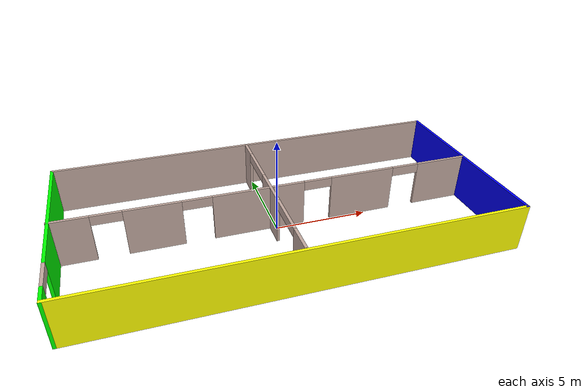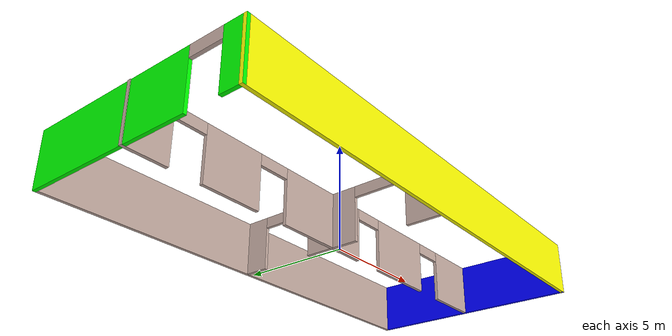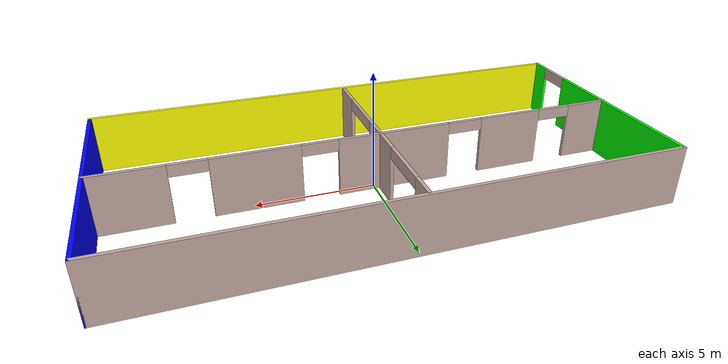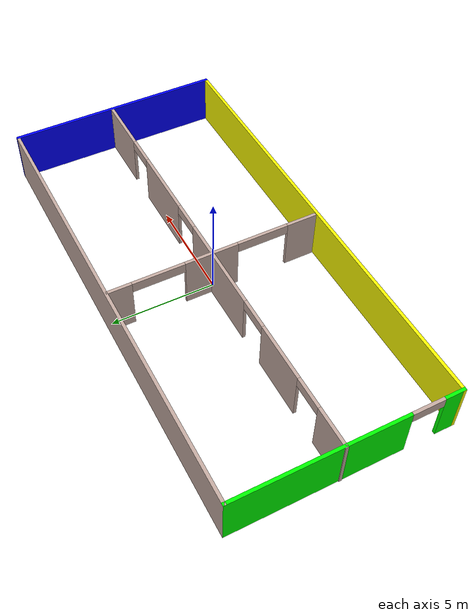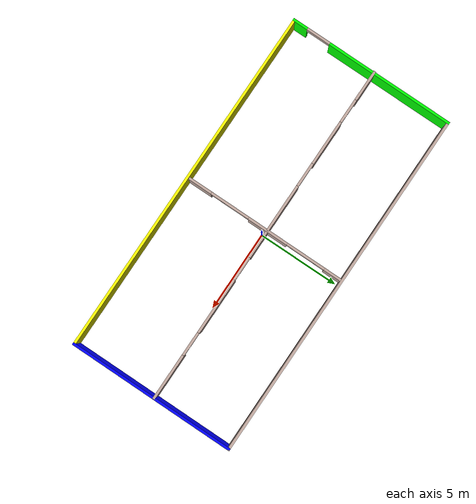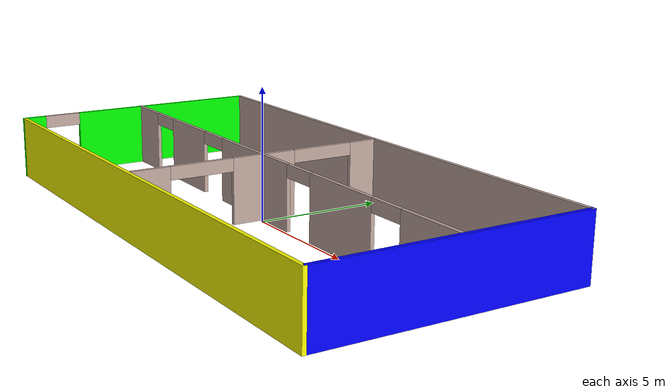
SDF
<?xml version='1.0'?>
<sdf version='1.6'>
  <model name='mybuilding'>
    <link name='Wall_1'>
      <pose frame=''>-10.9097 0 0 0 -0 1.5708</pose>
      <self_collide>0</self_collide>
      <kinematic>0</kinematic>
      <gravity>1</gravity>
      <inertial>
        <mass>1</mass>
        <pose frame=''>0 0 0 0 -0 0</pose>
        <inertia>
          <ixx>1</ixx>
          <ixy>0</ixy>
          <ixz>0</ixz>
          <iyy>1</iyy>
          <iyz>0</iyz>
          <izz>1</izz>
        </inertia>
      </inertial>
      <visual name='Wall_1_Visual_0'>
        <pose frame=''>-4.76721 0 1.25 0 -0 0</pose>
        <geometry>
          <box>
            <size>0.965586 0.15 2.5</size>
          </box>
        </geometry>
        <material>
          <script>
            <uri>file://media/materials/scripts/gazebo.material</uri>
            <name>Gazebo/Grey</name>
          </script>
          <ambient>0 1 0 1</ambient>
          <shader type='pixel'>
            <normal_map>__default__</normal_map>
          </shader>
          <diffuse>0 1 0 1</diffuse>
          <specular>0 1 0 1</specular>
          <emissive>0 1 0 1</emissive>
        </material>
        <meta>
          <layer>0</layer>
        </meta>
        <transparency>0</transparency>
        <cast_shadows>1</cast_shadows>
      </visual>
      <visual name='Wall_1_Visual_1'>
        <pose frame=''>1.23279 0 1.25 0 -0 0</pose>
        <geometry>
          <box>
            <size>8.03441 0.15 2.5</size>
          </box>
        </geometry>
        <material>
          <script>
            <uri>file://media/materials/scripts/gazebo.material</uri>
            <name>Gazebo/Grey</name>
          </script>
          <ambient>0 1 0 1</ambient>
          <shader type='pixel'>
            <normal_map>__default__</normal_map>
          </shader>
          <diffuse>0 1 0 1</diffuse>
          <specular>0 1 0 1</specular>
          <emissive>0 1 0 1</emissive>
        </material>
        <meta>
          <layer>0</layer>
        </meta>
        <transparency>0</transparency>
        <cast_shadows>1</cast_shadows>
      </visual>
      <visual name='Wall_1_Visual_2'>
        <pose frame=''>-3.53441 0 2.25 0 -0 0</pose>
        <geometry>
          <box>
            <size>1.5 0.15 0.5</size>
          </box>
        </geometry>
        <material>
          <script>
            <uri>file://media/materials/scripts/gazebo.material</uri>
            <name>Gazebo/Grey</name>
          </script>
          <ambient>0.761 0.663 0.627 1</ambient>
          <shader type='pixel'>
            <normal_map>__default__</normal_map>
          </shader>
          <diffuse>0.7 0.7 0.7 1</diffuse>
          <specular>0.01 0.01 0.01 1</specular>
          <emissive>0 0 0 1</emissive>
        </material>
        <meta>
          <layer>0</layer>
        </meta>
        <transparency>0</transparency>
        <cast_shadows>1</cast_shadows>
      </visual>
      <collision name='Wall_1_Collision_0'>
        <laser_retro>0</laser_retro>
        <max_contacts>10</max_contacts>
        <pose frame=''>-4.76721 0 1.25 0 -0 0</pose>
        <geometry>
          <box>
            <size>0.965586 0.15 2.5</size>
          </box>
        </geometry>
        <surface>
          <friction>
            <ode>
              <mu>1</mu>
              <mu2>1</mu2>
              <fdir1>0 0 0</fdir1>
              <slip1>0</slip1>
              <slip2>0</slip2>
            </ode>
            <torsional>
              <coefficient>1</coefficient>
              <patch_radius>0</patch_radius>
              <surface_radius>0</surface_radius>
              <use_patch_radius>1</use_patch_radius>
              <ode>
                <slip>0</slip>
              </ode>
            </torsional>
          </friction>
          <bounce>
            <restitution_coefficient>0</restitution_coefficient>
            <threshold>1e+06</threshold>
          </bounce>
          <contact>
            <collide_without_contact>0</collide_without_contact>
            <collide_without_contact_bitmask>1</collide_without_contact_bitmask>
            <collide_bitmask>1</collide_bitmask>
            <ode>
              <soft_cfm>0</soft_cfm>
              <soft_erp>0.2</soft_erp>
              <kp>1e+13</kp>
              <kd>1</kd>
              <max_vel>0.01</max_vel>
              <min_depth>0</min_depth>
            </ode>
            <bullet>
              <split_impulse>1</split_impulse>
              <split_impulse_penetration_threshold>-0.01</split_impulse_penetration_threshold>
              <soft_cfm>0</soft_cfm>
              <soft_erp>0.2</soft_erp>
              <kp>1e+13</kp>
              <kd>1</kd>
            </bullet>
          </contact>
        </surface>
      </collision>
      <collision name='Wall_1_Collision_1'>
        <laser_retro>0</laser_retro>
        <max_contacts>10</max_contacts>
        <pose frame=''>1.23279 0 1.25 0 -0 0</pose>
        <geometry>
          <box>
            <size>8.03441 0.15 2.5</size>
          </box>
        </geometry>
        <surface>
          <friction>
            <ode>
              <mu>1</mu>
              <mu2>1</mu2>
              <fdir1>0 0 0</fdir1>
              <slip1>0</slip1>
              <slip2>0</slip2>
            </ode>
            <torsional>
              <coefficient>1</coefficient>
              <patch_radius>0</patch_radius>
              <surface_radius>0</surface_radius>
              <use_patch_radius>1</use_patch_radius>
              <ode>
                <slip>0</slip>
              </ode>
            </torsional>
          </friction>
          <bounce>
            <restitution_coefficient>0</restitution_coefficient>
            <threshold>1e+06</threshold>
          </bounce>
          <contact>
            <collide_without_contact>0</collide_without_contact>
            <collide_without_contact_bitmask>1</collide_without_contact_bitmask>
            <collide_bitmask>1</collide_bitmask>
            <ode>
              <soft_cfm>0</soft_cfm>
              <soft_erp>0.2</soft_erp>
              <kp>1e+13</kp>
              <kd>1</kd>
              <max_vel>0.01</max_vel>
              <min_depth>0</min_depth>
            </ode>
            <bullet>
              <split_impulse>1</split_impulse>
              <split_impulse_penetration_threshold>-0.01</split_impulse_penetration_threshold>
              <soft_cfm>0</soft_cfm>
              <soft_erp>0.2</soft_erp>
              <kp>1e+13</kp>
              <kd>1</kd>
            </bullet>
          </contact>
        </surface>
      </collision>
      <collision name='Wall_1_Collision_2'>
        <laser_retro>0</laser_retro>
        <max_contacts>10</max_contacts>
        <pose frame=''>-3.53441 0 2.25 0 -0 0</pose>
        <geometry>
          <box>
            <size>1.5 0.15 0.5</size>
          </box>
        </geometry>
        <surface>
          <friction>
            <ode>
              <mu>1</mu>
              <mu2>1</mu2>
              <fdir1>0 0 0</fdir1>
              <slip1>0</slip1>
              <slip2>0</slip2>
            </ode>
            <torsional>
              <coefficient>1</coefficient>
              <patch_radius>0</patch_radius>
              <surface_radius>0</surface_radius>
              <use_patch_radius>1</use_patch_radius>
              <ode>
                <slip>0</slip>
              </ode>
            </torsional>
          </friction>
          <bounce>
            <restitution_coefficient>0</restitution_coefficient>
            <threshold>1e+06</threshold>
          </bounce>
          <contact>
            <collide_without_contact>0</collide_without_contact>
            <collide_without_contact_bitmask>1</collide_without_contact_bitmask>
            <collide_bitmask>1</collide_bitmask>
            <ode>
              <soft_cfm>0</soft_cfm>
              <soft_erp>0.2</soft_erp>
              <kp>1e+13</kp>
              <kd>1</kd>
              <max_vel>0.01</max_vel>
              <min_depth>0</min_depth>
            </ode>
            <bullet>
              <split_impulse>1</split_impulse>
              <split_impulse_penetration_threshold>-0.01</split_impulse_penetration_threshold>
              <soft_cfm>0</soft_cfm>
              <soft_erp>0.2</soft_erp>
              <kp>1e+13</kp>
              <kd>1</kd>
            </bullet>
          </contact>
        </surface>
      </collision>
    </link>
    <link name='Wall_2'>
      <pose frame=''>0.015294 5.175 0 0 -0 0</pose>
      <self_collide>0</self_collide>
      <kinematic>0</kinematic>
      <visual name='Wall_2_Visual'>
        <pose frame=''>0 0 1.25 0 -0 0</pose>
        <geometry>
          <box>
            <size>22 0.15 2.5</size>
          </box>
        </geometry>
        <material>
          <script>
            <uri>file://media/materials/scripts/gazebo.material</uri>
            <name>Gazebo/Grey</name>
          </script>
          <ambient>0.760784 0.662745 0.627451 1</ambient>
          <shader type='pixel'/>
          <diffuse>0.7 0.7 0.7 1</diffuse>
          <specular>0.01 0.01 0.01 1</specular>
          <emissive>0 0 0 1</emissive>
        </material>
        <meta>
          <layer>0</layer>
        </meta>
        <transparency>0</transparency>
        <cast_shadows>1</cast_shadows>
      </visual>
      <collision name='Wall_2_Collision'>
        <laser_retro>0</laser_retro>
        <max_contacts>10</max_contacts>
        <pose frame=''>0 0 1.25 0 -0 0</pose>
        <geometry>
          <box>
            <size>22 0.15 2.5</size>
          </box>
        </geometry>
        <surface>
          <friction>
            <ode>
              <mu>1</mu>
              <mu2>1</mu2>
              <fdir1>0 0 0</fdir1>
              <slip1>0</slip1>
              <slip2>0</slip2>
            </ode>
            <torsional>
              <coefficient>1</coefficient>
              <patch_radius>0</patch_radius>
              <surface_radius>0</surface_radius>
              <use_patch_radius>1</use_patch_radius>
              <ode>
                <slip>0</slip>
              </ode>
            </torsional>
          </friction>
          <bounce>
            <restitution_coefficient>0</restitution_coefficient>
            <threshold>1e+06</threshold>
          </bounce>
          <contact>
            <collide_without_contact>0</collide_without_contact>
            <collide_without_contact_bitmask>1</collide_without_contact_bitmask>
            <collide_bitmask>1</collide_bitmask>
            <ode>
              <soft_cfm>0</soft_cfm>
              <soft_erp>0.2</soft_erp>
              <kp>1e+13</kp>
              <kd>1</kd>
              <max_vel>0.01</max_vel>
              <min_depth>0</min_depth>
            </ode>
            <bullet>
              <split_impulse>1</split_impulse>
              <split_impulse_penetration_threshold>-0.01</split_impulse_penetration_threshold>
              <soft_cfm>0</soft_cfm>
              <soft_erp>0.2</soft_erp>
              <kp>1e+13</kp>
              <kd>1</kd>
            </bullet>
          </contact>
        </surface>
      </collision>
    </link>
    <link name='Wall_3'>
      <pose frame=''>10.9403 0 0 0 0 -1.5708</pose>
      <self_collide>0</self_collide>
      <kinematic>0</kinematic>
      <gravity>1</gravity>
      <inertial>
        <mass>1</mass>
        <pose frame=''>0 0 0 0 -0 0</pose>
        <inertia>
          <ixx>1</ixx>
          <ixy>0</ixy>
          <ixz>0</ixz>
          <iyy>1</iyy>
          <iyz>0</iyz>
          <izz>1</izz>
        </inertia>
      </inertial>
      <visual name='Wall_3_Visual'>
        <pose frame=''>0 0 1.25 0 -0 0</pose>
        <geometry>
          <box>
            <size>10.5 0.15 2.5</size>
          </box>
        </geometry>
        <material>
          <script>
            <uri>file://media/materials/scripts/gazebo.material</uri>
            <name>Gazebo/Grey</name>
          </script>
          <ambient>0 0 1 1</ambient>
          <shader type='pixel'>
            <normal_map>__default__</normal_map>
          </shader>
          <diffuse>0 0 1 1</diffuse>
          <specular>0 0 1 1</specular>
          <emissive>0 0 1 1</emissive>
        </material>
        <meta>
          <layer>0</layer>
        </meta>
        <transparency>0</transparency>
        <cast_shadows>1</cast_shadows>
      </visual>
      <collision name='Wall_3_Collision'>
        <laser_retro>0</laser_retro>
        <max_contacts>10</max_contacts>
        <pose frame=''>0 0 1.25 0 -0 0</pose>
        <geometry>
          <box>
            <size>10.5 0.15 2.5</size>
          </box>
        </geometry>
        <surface>
          <friction>
            <ode>
              <mu>1</mu>
              <mu2>1</mu2>
              <fdir1>0 0 0</fdir1>
              <slip1>0</slip1>
              <slip2>0</slip2>
            </ode>
            <torsional>
              <coefficient>1</coefficient>
              <patch_radius>0</patch_radius>
              <surface_radius>0</surface_radius>
              <use_patch_radius>1</use_patch_radius>
              <ode>
                <slip>0</slip>
              </ode>
            </torsional>
          </friction>
          <bounce>
            <restitution_coefficient>0</restitution_coefficient>
            <threshold>1e+06</threshold>
          </bounce>
          <contact>
            <collide_without_contact>0</collide_without_contact>
            <collide_without_contact_bitmask>1</collide_without_contact_bitmask>
            <collide_bitmask>1</collide_bitmask>
            <ode>
              <soft_cfm>0</soft_cfm>
              <soft_erp>0.2</soft_erp>
              <kp>1e+13</kp>
              <kd>1</kd>
              <max_vel>0.01</max_vel>
              <min_depth>0</min_depth>
            </ode>
            <bullet>
              <split_impulse>1</split_impulse>
              <split_impulse_penetration_threshold>-0.01</split_impulse_penetration_threshold>
              <soft_cfm>0</soft_cfm>
              <soft_erp>0.2</soft_erp>
              <kp>1e+13</kp>
              <kd>1</kd>
            </bullet>
          </contact>
        </surface>
      </collision>
    </link>
    <link name='Wall_4'>
      <pose frame=''>0.015294 -5.175 0 0 -0 3.14159</pose>
      <self_collide>0</self_collide>
      <kinematic>0</kinematic>
      <gravity>1</gravity>
      <inertial>
        <mass>1</mass>
        <pose frame=''>0 0 0 0 -0 0</pose>
        <inertia>
          <ixx>1</ixx>
          <ixy>0</ixy>
          <ixz>0</ixz>
          <iyy>1</iyy>
          <iyz>0</iyz>
          <izz>1</izz>
        </inertia>
      </inertial>
      <visual name='Wall_4_Visual'>
        <pose frame=''>0 0 1.25 0 -0 0</pose>
        <geometry>
          <box>
            <size>22 0.15 2.5</size>
          </box>
        </geometry>
        <material>
          <script>
            <uri>file://media/materials/scripts/gazebo.material</uri>
            <name>Gazebo/Grey</name>
          </script>
          <ambient>1 1 0 1</ambient>
          <shader type='pixel'>
            <normal_map>__default__</normal_map>
          </shader>
          <diffuse>1 1 0 1</diffuse>
          <specular>1 1 0 1</specular>
          <emissive>1 1 0 1</emissive>
        </material>
        <meta>
          <layer>0</layer>
        </meta>
        <transparency>0</transparency>
        <cast_shadows>1</cast_shadows>
      </visual>
      <collision name='Wall_4_Collision'>
        <laser_retro>0</laser_retro>
        <max_contacts>10</max_contacts>
        <pose frame=''>0 0 1.25 0 -0 0</pose>
        <geometry>
          <box>
            <size>22 0.15 2.5</size>
          </box>
        </geometry>
        <surface>
          <friction>
            <ode>
              <mu>1</mu>
              <mu2>1</mu2>
              <fdir1>0 0 0</fdir1>
              <slip1>0</slip1>
              <slip2>0</slip2>
            </ode>
            <torsional>
              <coefficient>1</coefficient>
              <patch_radius>0</patch_radius>
              <surface_radius>0</surface_radius>
              <use_patch_radius>1</use_patch_radius>
              <ode>
                <slip>0</slip>
              </ode>
            </torsional>
          </friction>
          <bounce>
            <restitution_coefficient>0</restitution_coefficient>
            <threshold>1e+06</threshold>
          </bounce>
          <contact>
            <collide_without_contact>0</collide_without_contact>
            <collide_without_contact_bitmask>1</collide_without_contact_bitmask>
            <collide_bitmask>1</collide_bitmask>
            <ode>
              <soft_cfm>0</soft_cfm>
              <soft_erp>0.2</soft_erp>
              <kp>1e+13</kp>
              <kd>1</kd>
              <max_vel>0.01</max_vel>
              <min_depth>0</min_depth>
            </ode>
            <bullet>
              <split_impulse>1</split_impulse>
              <split_impulse_penetration_threshold>-0.01</split_impulse_penetration_threshold>
              <soft_cfm>0</soft_cfm>
              <soft_erp>0.2</soft_erp>
              <kp>1e+13</kp>
              <kd>1</kd>
            </bullet>
          </contact>
        </surface>
      </collision>
    </link>
    <link name='Wall_6'>
      <pose frame=''>-0.015296 0.17829 0 0 -0 0</pose>
      <self_collide>0</self_collide>
      <kinematic>0</kinematic>
      <visual name='Wall_6_Visual_0'>
        <pose frame=''>-10.0374 0 1.25 0 -0 0</pose>
        <geometry>
          <box>
            <size>1.92517 0.15 2.5</size>
          </box>
        </geometry>
        <material>
          <script>
            <uri>file://media/materials/scripts/gazebo.material</uri>
            <name>Gazebo/Grey</name>
          </script>
          <ambient>0.760784 0.662745 0.627451 1</ambient>
          <shader type='pixel'/>
          <diffuse>0.7 0.7 0.7 1</diffuse>
          <specular>0.01 0.01 0.01 1</specular>
          <emissive>0 0 0 1</emissive>
        </material>
        <meta>
          <layer>0</layer>
        </meta>
        <transparency>0</transparency>
        <cast_shadows>1</cast_shadows>
      </visual>
      <visual name='Wall_6_Visual_1'>
        <pose frame=''>-6.16822 0 1.25 0 -0 0</pose>
        <geometry>
          <box>
            <size>2.81322 0.15 2.5</size>
          </box>
        </geometry>
        <material>
          <script>
            <uri>file://media/materials/scripts/gazebo.material</uri>
            <name>Gazebo/Grey</name>
          </script>
          <ambient>0.760784 0.662745 0.627451 1</ambient>
          <shader type='pixel'/>
          <diffuse>0.7 0.7 0.7 1</diffuse>
          <specular>0.01 0.01 0.01 1</specular>
          <emissive>0 0 0 1</emissive>
        </material>
        <meta>
          <layer>0</layer>
        </meta>
        <transparency>0</transparency>
        <cast_shadows>1</cast_shadows>
      </visual>
      <visual name='Wall_6_Visual_2'>
        <pose frame=''>-0.860815 0 1.25 0 -0 0</pose>
        <geometry>
          <box>
            <size>4.80159 0.15 2.5</size>
          </box>
        </geometry>
        <material>
          <script>
            <uri>file://media/materials/scripts/gazebo.material</uri>
            <name>Gazebo/Grey</name>
          </script>
          <ambient>0.760784 0.662745 0.627451 1</ambient>
          <shader type='pixel'/>
          <diffuse>0.7 0.7 0.7 1</diffuse>
          <specular>0.01 0.01 0.01 1</specular>
          <emissive>0 0 0 1</emissive>
        </material>
        <meta>
          <layer>0</layer>
        </meta>
        <transparency>0</transparency>
        <cast_shadows>1</cast_shadows>
      </visual>
      <visual name='Wall_6_Visual_3'>
        <pose frame=''>4.81367 0 1.25 0 -0 0</pose>
        <geometry>
          <box>
            <size>3.54739 0.15 2.5</size>
          </box>
        </geometry>
        <material>
          <script>
            <uri>file://media/materials/scripts/gazebo.material</uri>
            <name>Gazebo/Grey</name>
          </script>
          <ambient>0.760784 0.662745 0.627451 1</ambient>
          <shader type='pixel'/>
          <diffuse>0.7 0.7 0.7 1</diffuse>
          <specular>0.01 0.01 0.01 1</specular>
          <emissive>0 0 0 1</emissive>
        </material>
        <meta>
          <layer>0</layer>
        </meta>
        <transparency>0</transparency>
        <cast_shadows>1</cast_shadows>
      </visual>
      <visual name='Wall_6_Visual_4'>
        <pose frame=''>9.54368 0 1.25 0 -0 0</pose>
        <geometry>
          <box>
            <size>2.91263 0.15 2.5</size>
          </box>
        </geometry>
        <material>
          <script>
            <uri>file://media/materials/scripts/gazebo.material</uri>
            <name>Gazebo/Grey</name>
          </script>
          <ambient>0.760784 0.662745 0.627451 1</ambient>
          <shader type='pixel'/>
          <diffuse>0.7 0.7 0.7 1</diffuse>
          <specular>0.01 0.01 0.01 1</specular>
          <emissive>0 0 0 1</emissive>
        </material>
        <meta>
          <layer>0</layer>
        </meta>
        <transparency>0</transparency>
        <cast_shadows>1</cast_shadows>
      </visual>
      <visual name='Wall_6_Visual_5'>
        <pose frame=''>-8.32483 0 2.25 0 -0 0</pose>
        <geometry>
          <box>
            <size>1.5 0.15 0.5</size>
          </box>
        </geometry>
        <material>
          <script>
            <uri>file://media/materials/scripts/gazebo.material</uri>
            <name>Gazebo/Grey</name>
          </script>
          <ambient>0.760784 0.662745 0.627451 1</ambient>
          <shader type='pixel'/>
          <diffuse>0.7 0.7 0.7 1</diffuse>
          <specular>0.01 0.01 0.01 1</specular>
          <emissive>0 0 0 1</emissive>
        </material>
        <meta>
          <layer>0</layer>
        </meta>
        <transparency>0</transparency>
        <cast_shadows>1</cast_shadows>
      </visual>
      <visual name='Wall_6_Visual_6'>
        <pose frame=''>-4.01161 0 2.25 0 -0 0</pose>
        <geometry>
          <box>
            <size>1.5 0.15 0.5</size>
          </box>
        </geometry>
        <material>
          <script>
            <uri>file://media/materials/scripts/gazebo.material</uri>
            <name>Gazebo/Grey</name>
          </script>
          <ambient>0.760784 0.662745 0.627451 1</ambient>
          <shader type='pixel'/>
          <diffuse>0.7 0.7 0.7 1</diffuse>
          <specular>0.01 0.01 0.01 1</specular>
          <emissive>0 0 0 1</emissive>
        </material>
        <meta>
          <layer>0</layer>
        </meta>
        <transparency>0</transparency>
        <cast_shadows>1</cast_shadows>
      </visual>
      <visual name='Wall_6_Visual_7'>
        <pose frame=''>2.28998 0 2.25 0 -0 0</pose>
        <geometry>
          <box>
            <size>1.5 0.15 0.5</size>
          </box>
        </geometry>
        <material>
          <script>
            <uri>file://media/materials/scripts/gazebo.material</uri>
            <name>Gazebo/Grey</name>
          </script>
          <ambient>0.760784 0.662745 0.627451 1</ambient>
          <shader type='pixel'/>
          <diffuse>0.7 0.7 0.7 1</diffuse>
          <specular>0.01 0.01 0.01 1</specular>
          <emissive>0 0 0 1</emissive>
        </material>
        <meta>
          <layer>0</layer>
        </meta>
        <transparency>0</transparency>
        <cast_shadows>1</cast_shadows>
      </visual>
      <visual name='Wall_6_Visual_8'>
        <pose frame=''>7.33737 0 2.25 0 -0 0</pose>
        <geometry>
          <box>
            <size>1.5 0.15 0.5</size>
          </box>
        </geometry>
        <material>
          <script>
            <uri>file://media/materials/scripts/gazebo.material</uri>
            <name>Gazebo/Grey</name>
          </script>
          <ambient>0.760784 0.662745 0.627451 1</ambient>
          <shader type='pixel'/>
          <diffuse>0.7 0.7 0.7 1</diffuse>
          <specular>0.01 0.01 0.01 1</specular>
          <emissive>0 0 0 1</emissive>
        </material>
        <meta>
          <layer>0</layer>
        </meta>
        <transparency>0</transparency>
        <cast_shadows>1</cast_shadows>
      </visual>
      <collision name='Wall_6_Collision_0'>
        <laser_retro>0</laser_retro>
        <max_contacts>10</max_contacts>
        <pose frame=''>-10.0374 0 1.25 0 -0 0</pose>
        <geometry>
          <box>
            <size>1.92517 0.15 2.5</size>
          </box>
        </geometry>
        <surface>
          <friction>
            <ode>
              <mu>1</mu>
              <mu2>1</mu2>
              <fdir1>0 0 0</fdir1>
              <slip1>0</slip1>
              <slip2>0</slip2>
            </ode>
            <torsional>
              <coefficient>1</coefficient>
              <patch_radius>0</patch_radius>
              <surface_radius>0</surface_radius>
              <use_patch_radius>1</use_patch_radius>
              <ode>
                <slip>0</slip>
              </ode>
            </torsional>
          </friction>
          <bounce>
            <restitution_coefficient>0</restitution_coefficient>
            <threshold>1e+06</threshold>
          </bounce>
          <contact>
            <collide_without_contact>0</collide_without_contact>
            <collide_without_contact_bitmask>1</collide_without_contact_bitmask>
            <collide_bitmask>1</collide_bitmask>
            <ode>
              <soft_cfm>0</soft_cfm>
              <soft_erp>0.2</soft_erp>
              <kp>1e+13</kp>
              <kd>1</kd>
              <max_vel>0.01</max_vel>
              <min_depth>0</min_depth>
            </ode>
            <bullet>
              <split_impulse>1</split_impulse>
              <split_impulse_penetration_threshold>-0.01</split_impulse_penetration_threshold>
              <soft_cfm>0</soft_cfm>
              <soft_erp>0.2</soft_erp>
              <kp>1e+13</kp>
              <kd>1</kd>
            </bullet>
          </contact>
        </surface>
      </collision>
      <collision name='Wall_6_Collision_1'>
        <laser_retro>0</laser_retro>
        <max_contacts>10</max_contacts>
        <pose frame=''>-6.16822 0 1.25 0 -0 0</pose>
        <geometry>
          <box>
            <size>2.81322 0.15 2.5</size>
          </box>
        </geometry>
        <surface>
          <friction>
            <ode>
              <mu>1</mu>
              <mu2>1</mu2>
              <fdir1>0 0 0</fdir1>
              <slip1>0</slip1>
              <slip2>0</slip2>
            </ode>
            <torsional>
              <coefficient>1</coefficient>
              <patch_radius>0</patch_radius>
              <surface_radius>0</surface_radius>
              <use_patch_radius>1</use_patch_radius>
              <ode>
                <slip>0</slip>
              </ode>
            </torsional>
          </friction>
          <bounce>
            <restitution_coefficient>0</restitution_coefficient>
            <threshold>1e+06</threshold>
          </bounce>
          <contact>
            <collide_without_contact>0</collide_without_contact>
            <collide_without_contact_bitmask>1</collide_without_contact_bitmask>
            <collide_bitmask>1</collide_bitmask>
            <ode>
              <soft_cfm>0</soft_cfm>
              <soft_erp>0.2</soft_erp>
              <kp>1e+13</kp>
              <kd>1</kd>
              <max_vel>0.01</max_vel>
              <min_depth>0</min_depth>
            </ode>
            <bullet>
              <split_impulse>1</split_impulse>
              <split_impulse_penetration_threshold>-0.01</split_impulse_penetration_threshold>
              <soft_cfm>0</soft_cfm>
              <soft_erp>0.2</soft_erp>
              <kp>1e+13</kp>
              <kd>1</kd>
            </bullet>
          </contact>
        </surface>
      </collision>
      <collision name='Wall_6_Collision_2'>
        <laser_retro>0</laser_retro>
        <max_contacts>10</max_contacts>
        <pose frame=''>-0.860815 0 1.25 0 -0 0</pose>
        <geometry>
          <box>
            <size>4.80159 0.15 2.5</size>
          </box>
        </geometry>
        <surface>
          <friction>
            <ode>
              <mu>1</mu>
              <mu2>1</mu2>
              <fdir1>0 0 0</fdir1>
              <slip1>0</slip1>
              <slip2>0</slip2>
            </ode>
            <torsional>
              <coefficient>1</coefficient>
              <patch_radius>0</patch_radius>
              <surface_radius>0</surface_radius>
              <use_patch_radius>1</use_patch_radius>
              <ode>
                <slip>0</slip>
              </ode>
            </torsional>
          </friction>
          <bounce>
            <restitution_coefficient>0</restitution_coefficient>
            <threshold>1e+06</threshold>
          </bounce>
          <contact>
            <collide_without_contact>0</collide_without_contact>
            <collide_without_contact_bitmask>1</collide_without_contact_bitmask>
            <collide_bitmask>1</collide_bitmask>
            <ode>
              <soft_cfm>0</soft_cfm>
              <soft_erp>0.2</soft_erp>
              <kp>1e+13</kp>
              <kd>1</kd>
              <max_vel>0.01</max_vel>
              <min_depth>0</min_depth>
            </ode>
            <bullet>
              <split_impulse>1</split_impulse>
              <split_impulse_penetration_threshold>-0.01</split_impulse_penetration_threshold>
              <soft_cfm>0</soft_cfm>
              <soft_erp>0.2</soft_erp>
              <kp>1e+13</kp>
              <kd>1</kd>
            </bullet>
          </contact>
        </surface>
      </collision>
      <collision name='Wall_6_Collision_3'>
        <laser_retro>0</laser_retro>
        <max_contacts>10</max_contacts>
        <pose frame=''>4.81367 0 1.25 0 -0 0</pose>
        <geometry>
          <box>
            <size>3.54739 0.15 2.5</size>
          </box>
        </geometry>
        <surface>
          <friction>
            <ode>
              <mu>1</mu>
              <mu2>1</mu2>
              <fdir1>0 0 0</fdir1>
              <slip1>0</slip1>
              <slip2>0</slip2>
            </ode>
            <torsional>
              <coefficient>1</coefficient>
              <patch_radius>0</patch_radius>
              <surface_radius>0</surface_radius>
              <use_patch_radius>1</use_patch_radius>
              <ode>
                <slip>0</slip>
              </ode>
            </torsional>
          </friction>
          <bounce>
            <restitution_coefficient>0</restitution_coefficient>
            <threshold>1e+06</threshold>
          </bounce>
          <contact>
            <collide_without_contact>0</collide_without_contact>
            <collide_without_contact_bitmask>1</collide_without_contact_bitmask>
            <collide_bitmask>1</collide_bitmask>
            <ode>
              <soft_cfm>0</soft_cfm>
              <soft_erp>0.2</soft_erp>
              <kp>1e+13</kp>
              <kd>1</kd>
              <max_vel>0.01</max_vel>
              <min_depth>0</min_depth>
            </ode>
            <bullet>
              <split_impulse>1</split_impulse>
              <split_impulse_penetration_threshold>-0.01</split_impulse_penetration_threshold>
              <soft_cfm>0</soft_cfm>
              <soft_erp>0.2</soft_erp>
              <kp>1e+13</kp>
              <kd>1</kd>
            </bullet>
          </contact>
        </surface>
      </collision>
      <collision name='Wall_6_Collision_4'>
        <laser_retro>0</laser_retro>
        <max_contacts>10</max_contacts>
        <pose frame=''>9.54368 0 1.25 0 -0 0</pose>
        <geometry>
          <box>
            <size>2.91263 0.15 2.5</size>
          </box>
        </geometry>
        <surface>
          <friction>
            <ode>
              <mu>1</mu>
              <mu2>1</mu2>
              <fdir1>0 0 0</fdir1>
              <slip1>0</slip1>
              <slip2>0</slip2>
            </ode>
            <torsional>
              <coefficient>1</coefficient>
              <patch_radius>0</patch_radius>
              <surface_radius>0</surface_radius>
              <use_patch_radius>1</use_patch_radius>
              <ode>
                <slip>0</slip>
              </ode>
            </torsional>
          </friction>
          <bounce>
            <restitution_coefficient>0</restitution_coefficient>
            <threshold>1e+06</threshold>
          </bounce>
          <contact>
            <collide_without_contact>0</collide_without_contact>
            <collide_without_contact_bitmask>1</collide_without_contact_bitmask>
            <collide_bitmask>1</collide_bitmask>
            <ode>
              <soft_cfm>0</soft_cfm>
              <soft_erp>0.2</soft_erp>
              <kp>1e+13</kp>
              <kd>1</kd>
              <max_vel>0.01</max_vel>
              <min_depth>0</min_depth>
            </ode>
            <bullet>
              <split_impulse>1</split_impulse>
              <split_impulse_penetration_threshold>-0.01</split_impulse_penetration_threshold>
              <soft_cfm>0</soft_cfm>
              <soft_erp>0.2</soft_erp>
              <kp>1e+13</kp>
              <kd>1</kd>
            </bullet>
          </contact>
        </surface>
      </collision>
      <collision name='Wall_6_Collision_5'>
        <laser_retro>0</laser_retro>
        <max_contacts>10</max_contacts>
        <pose frame=''>-8.32483 0 2.25 0 -0 0</pose>
        <geometry>
          <box>
            <size>1.5 0.15 0.5</size>
          </box>
        </geometry>
        <surface>
          <friction>
            <ode>
              <mu>1</mu>
              <mu2>1</mu2>
              <fdir1>0 0 0</fdir1>
              <slip1>0</slip1>
              <slip2>0</slip2>
            </ode>
            <torsional>
              <coefficient>1</coefficient>
              <patch_radius>0</patch_radius>
              <surface_radius>0</surface_radius>
              <use_patch_radius>1</use_patch_radius>
              <ode>
                <slip>0</slip>
              </ode>
            </torsional>
          </friction>
          <bounce>
            <restitution_coefficient>0</restitution_coefficient>
            <threshold>1e+06</threshold>
          </bounce>
          <contact>
            <collide_without_contact>0</collide_without_contact>
            <collide_without_contact_bitmask>1</collide_without_contact_bitmask>
            <collide_bitmask>1</collide_bitmask>
            <ode>
              <soft_cfm>0</soft_cfm>
              <soft_erp>0.2</soft_erp>
              <kp>1e+13</kp>
              <kd>1</kd>
              <max_vel>0.01</max_vel>
              <min_depth>0</min_depth>
            </ode>
            <bullet>
              <split_impulse>1</split_impulse>
              <split_impulse_penetration_threshold>-0.01</split_impulse_penetration_threshold>
              <soft_cfm>0</soft_cfm>
              <soft_erp>0.2</soft_erp>
              <kp>1e+13</kp>
              <kd>1</kd>
            </bullet>
          </contact>
        </surface>
      </collision>
      <collision name='Wall_6_Collision_7'>
        <laser_retro>0</laser_retro>
        <max_contacts>10</max_contacts>
        <pose frame=''>2.28998 0 2.25 0 -0 0</pose>
        <geometry>
          <box>
            <size>1.5 0.15 0.5</size>
          </box>
        </geometry>
        <surface>
          <friction>
            <ode>
              <mu>1</mu>
              <mu2>1</mu2>
              <fdir1>0 0 0</fdir1>
              <slip1>0</slip1>
              <slip2>0</slip2>
            </ode>
            <torsional>
              <coefficient>1</coefficient>
              <patch_radius>0</patch_radius>
              <surface_radius>0</surface_radius>
              <use_patch_radius>1</use_patch_radius>
              <ode>
                <slip>0</slip>
              </ode>
            </torsional>
          </friction>
          <bounce>
            <restitution_coefficient>0</restitution_coefficient>
            <threshold>1e+06</threshold>
          </bounce>
          <contact>
            <collide_without_contact>0</collide_without_contact>
            <collide_without_contact_bitmask>1</collide_without_contact_bitmask>
            <collide_bitmask>1</collide_bitmask>
            <ode>
              <soft_cfm>0</soft_cfm>
              <soft_erp>0.2</soft_erp>
              <kp>1e+13</kp>
              <kd>1</kd>
              <max_vel>0.01</max_vel>
              <min_depth>0</min_depth>
            </ode>
            <bullet>
              <split_impulse>1</split_impulse>
              <split_impulse_penetration_threshold>-0.01</split_impulse_penetration_threshold>
              <soft_cfm>0</soft_cfm>
              <soft_erp>0.2</soft_erp>
              <kp>1e+13</kp>
              <kd>1</kd>
            </bullet>
          </contact>
        </surface>
      </collision>
      <collision name='Wall_6_Collision_6'>
        <laser_retro>0</laser_retro>
        <max_contacts>10</max_contacts>
        <pose frame=''>-4.01161 0 2.25 0 -0 0</pose>
        <geometry>
          <box>
            <size>1.5 0.15 0.5</size>
          </box>
        </geometry>
        <surface>
          <friction>
            <ode>
              <mu>1</mu>
              <mu2>1</mu2>
              <fdir1>0 0 0</fdir1>
              <slip1>0</slip1>
              <slip2>0</slip2>
            </ode>
            <torsional>
              <coefficient>1</coefficient>
              <patch_radius>0</patch_radius>
              <surface_radius>0</surface_radius>
              <use_patch_radius>1</use_patch_radius>
              <ode>
                <slip>0</slip>
              </ode>
            </torsional>
          </friction>
          <bounce>
            <restitution_coefficient>0</restitution_coefficient>
            <threshold>1e+06</threshold>
          </bounce>
          <contact>
            <collide_without_contact>0</collide_without_contact>
            <collide_without_contact_bitmask>1</collide_without_contact_bitmask>
            <collide_bitmask>1</collide_bitmask>
            <ode>
              <soft_cfm>0</soft_cfm>
              <soft_erp>0.2</soft_erp>
              <kp>1e+13</kp>
              <kd>1</kd>
              <max_vel>0.01</max_vel>
              <min_depth>0</min_depth>
            </ode>
            <bullet>
              <split_impulse>1</split_impulse>
              <split_impulse_penetration_threshold>-0.01</split_impulse_penetration_threshold>
              <soft_cfm>0</soft_cfm>
              <soft_erp>0.2</soft_erp>
              <kp>1e+13</kp>
              <kd>1</kd>
            </bullet>
          </contact>
        </surface>
      </collision>
      <collision name='Wall_6_Collision_8'>
        <laser_retro>0</laser_retro>
        <max_contacts>10</max_contacts>
        <pose frame=''>7.33737 0 2.25 0 -0 0</pose>
        <geometry>
          <box>
            <size>1.5 0.15 0.5</size>
          </box>
        </geometry>
        <surface>
          <friction>
            <ode>
              <mu>1</mu>
              <mu2>1</mu2>
              <fdir1>0 0 0</fdir1>
              <slip1>0</slip1>
              <slip2>0</slip2>
            </ode>
            <torsional>
              <coefficient>1</coefficient>
              <patch_radius>0</patch_radius>
              <surface_radius>0</surface_radius>
              <use_patch_radius>1</use_patch_radius>
              <ode>
                <slip>0</slip>
              </ode>
            </torsional>
          </friction>
          <bounce>
            <restitution_coefficient>0</restitution_coefficient>
            <threshold>1e+06</threshold>
          </bounce>
          <contact>
            <collide_without_contact>0</collide_without_contact>
            <collide_without_contact_bitmask>1</collide_without_contact_bitmask>
            <collide_bitmask>1</collide_bitmask>
            <ode>
              <soft_cfm>0</soft_cfm>
              <soft_erp>0.2</soft_erp>
              <kp>1e+13</kp>
              <kd>1</kd>
              <max_vel>0.01</max_vel>
              <min_depth>0</min_depth>
            </ode>
            <bullet>
              <split_impulse>1</split_impulse>
              <split_impulse_penetration_threshold>-0.01</split_impulse_penetration_threshold>
              <soft_cfm>0</soft_cfm>
              <soft_erp>0.2</soft_erp>
              <kp>1e+13</kp>
              <kd>1</kd>
            </bullet>
          </contact>
        </surface>
      </collision>
    </link>
    <link name='Wall_8'>
      <pose frame=''>-0.264307 0.053317 0 0 0 -1.5708</pose>
      <self_collide>0</self_collide>
      <kinematic>0</kinematic>
      <visual name='Wall_8_Visual_0'>
        <pose frame=''>-4.53478 0 1.25 0 -0 0</pose>
        <geometry>
          <box>
            <size>1.18045 0.15 2.5</size>
          </box>
        </geometry>
        <material>
          <script>
            <uri>file://media/materials/scripts/gazebo.material</uri>
            <name>Gazebo/Grey</name>
          </script>
          <ambient>0.760784 0.662745 0.627451 1</ambient>
          <shader type='pixel'/>
          <diffuse>0.7 0.7 0.7 1</diffuse>
          <specular>0.01 0.01 0.01 1</specular>
          <emissive>0 0 0 1</emissive>
        </material>
        <meta>
          <layer>0</layer>
        </meta>
        <transparency>0</transparency>
        <cast_shadows>1</cast_shadows>
      </visual>
      <visual name='Wall_8_Visual_1'>
        <pose frame=''>-0.155563 0 1.25 0 -0 0</pose>
        <geometry>
          <box>
            <size>2.57798 0.15 2.5</size>
          </box>
        </geometry>
        <material>
          <script>
            <uri>file://media/materials/scripts/gazebo.material</uri>
            <name>Gazebo/Grey</name>
          </script>
          <ambient>0.760784 0.662745 0.627451 1</ambient>
          <shader type='pixel'/>
          <diffuse>0.7 0.7 0.7 1</diffuse>
          <specular>0.01 0.01 0.01 1</specular>
          <emissive>0 0 0 1</emissive>
        </material>
        <meta>
          <layer>0</layer>
        </meta>
        <transparency>0</transparency>
        <cast_shadows>1</cast_shadows>
      </visual>
      <visual name='Wall_8_Visual_2'>
        <pose frame=''>4.37921 0 1.25 0 -0 0</pose>
        <geometry>
          <box>
            <size>1.49157 0.15 2.5</size>
          </box>
        </geometry>
        <material>
          <script>
            <uri>file://media/materials/scripts/gazebo.material</uri>
            <name>Gazebo/Grey</name>
          </script>
          <ambient>0.760784 0.662745 0.627451 1</ambient>
          <shader type='pixel'/>
          <diffuse>0.7 0.7 0.7 1</diffuse>
          <specular>0.01 0.01 0.01 1</specular>
          <emissive>0 0 0 1</emissive>
        </material>
        <meta>
          <layer>0</layer>
        </meta>
        <transparency>0</transparency>
        <cast_shadows>1</cast_shadows>
      </visual>
      <visual name='Wall_8_Visual_3'>
        <pose frame=''>-2.69455 0 2.25 0 -0 0</pose>
        <geometry>
          <box>
            <size>2.5 0.15 0.5</size>
          </box>
        </geometry>
        <material>
          <script>
            <uri>file://media/materials/scripts/gazebo.material</uri>
            <name>Gazebo/Grey</name>
          </script>
          <ambient>0.760784 0.662745 0.627451 1</ambient>
          <shader type='pixel'/>
          <diffuse>0.7 0.7 0.7 1</diffuse>
          <specular>0.01 0.01 0.01 1</specular>
          <emissive>0 0 0 1</emissive>
        </material>
        <meta>
          <layer>0</layer>
        </meta>
        <transparency>0</transparency>
        <cast_shadows>1</cast_shadows>
      </visual>
      <visual name='Wall_8_Visual_4'>
        <pose frame=''>2.38343 0 2.25 0 -0 0</pose>
        <geometry>
          <box>
            <size>2.5 0.15 0.5</size>
          </box>
        </geometry>
        <material>
          <script>
            <uri>file://media/materials/scripts/gazebo.material</uri>
            <name>Gazebo/Grey</name>
          </script>
          <ambient>0.760784 0.662745 0.627451 1</ambient>
          <shader type='pixel'/>
          <diffuse>0.7 0.7 0.7 1</diffuse>
          <specular>0.01 0.01 0.01 1</specular>
          <emissive>0 0 0 1</emissive>
        </material>
        <meta>
          <layer>0</layer>
        </meta>
        <transparency>0</transparency>
        <cast_shadows>1</cast_shadows>
      </visual>
      <collision name='Wall_8_Collision_2'>
        <laser_retro>0</laser_retro>
        <max_contacts>10</max_contacts>
        <pose frame=''>4.37921 0 1.25 0 -0 0</pose>
        <geometry>
          <box>
            <size>1.49157 0.15 2.5</size>
          </box>
        </geometry>
        <surface>
          <friction>
            <ode>
              <mu>1</mu>
              <mu2>1</mu2>
              <fdir1>0 0 0</fdir1>
              <slip1>0</slip1>
              <slip2>0</slip2>
            </ode>
            <torsional>
              <coefficient>1</coefficient>
              <patch_radius>0</patch_radius>
              <surface_radius>0</surface_radius>
              <use_patch_radius>1</use_patch_radius>
              <ode>
                <slip>0</slip>
              </ode>
            </torsional>
          </friction>
          <bounce>
            <restitution_coefficient>0</restitution_coefficient>
            <threshold>1e+06</threshold>
          </bounce>
          <contact>
            <collide_without_contact>0</collide_without_contact>
            <collide_without_contact_bitmask>1</collide_without_contact_bitmask>
            <collide_bitmask>1</collide_bitmask>
            <ode>
              <soft_cfm>0</soft_cfm>
              <soft_erp>0.2</soft_erp>
              <kp>1e+13</kp>
              <kd>1</kd>
              <max_vel>0.01</max_vel>
              <min_depth>0</min_depth>
            </ode>
            <bullet>
              <split_impulse>1</split_impulse>
              <split_impulse_penetration_threshold>-0.01</split_impulse_penetration_threshold>
              <soft_cfm>0</soft_cfm>
              <soft_erp>0.2</soft_erp>
              <kp>1e+13</kp>
              <kd>1</kd>
            </bullet>
          </contact>
        </surface>
      </collision>
      <collision name='Wall_8_Collision_0'>
        <laser_retro>0</laser_retro>
        <max_contacts>10</max_contacts>
        <pose frame=''>-4.53478 0 1.25 0 -0 0</pose>
        <geometry>
          <box>
            <size>1.18045 0.15 2.5</size>
          </box>
        </geometry>
        <surface>
          <friction>
            <ode>
              <mu>1</mu>
              <mu2>1</mu2>
              <fdir1>0 0 0</fdir1>
              <slip1>0</slip1>
              <slip2>0</slip2>
            </ode>
            <torsional>
              <coefficient>1</coefficient>
              <patch_radius>0</patch_radius>
              <surface_radius>0</surface_radius>
              <use_patch_radius>1</use_patch_radius>
              <ode>
                <slip>0</slip>
              </ode>
            </torsional>
          </friction>
          <bounce>
            <restitution_coefficient>0</restitution_coefficient>
            <threshold>1e+06</threshold>
          </bounce>
          <contact>
            <collide_without_contact>0</collide_without_contact>
            <collide_without_contact_bitmask>1</collide_without_contact_bitmask>
            <collide_bitmask>1</collide_bitmask>
            <ode>
              <soft_cfm>0</soft_cfm>
              <soft_erp>0.2</soft_erp>
              <kp>1e+13</kp>
              <kd>1</kd>
              <max_vel>0.01</max_vel>
              <min_depth>0</min_depth>
            </ode>
            <bullet>
              <split_impulse>1</split_impulse>
              <split_impulse_penetration_threshold>-0.01</split_impulse_penetration_threshold>
              <soft_cfm>0</soft_cfm>
              <soft_erp>0.2</soft_erp>
              <kp>1e+13</kp>
              <kd>1</kd>
            </bullet>
          </contact>
        </surface>
      </collision>
      <collision name='Wall_8_Collision_1'>
        <laser_retro>0</laser_retro>
        <max_contacts>10</max_contacts>
        <pose frame=''>-0.155563 0 1.25 0 -0 0</pose>
        <geometry>
          <box>
            <size>2.57798 0.15 2.5</size>
          </box>
        </geometry>
        <surface>
          <friction>
            <ode>
              <mu>1</mu>
              <mu2>1</mu2>
              <fdir1>0 0 0</fdir1>
              <slip1>0</slip1>
              <slip2>0</slip2>
            </ode>
            <torsional>
              <coefficient>1</coefficient>
              <patch_radius>0</patch_radius>
              <surface_radius>0</surface_radius>
              <use_patch_radius>1</use_patch_radius>
              <ode>
                <slip>0</slip>
              </ode>
            </torsional>
          </friction>
          <bounce>
            <restitution_coefficient>0</restitution_coefficient>
            <threshold>1e+06</threshold>
          </bounce>
          <contact>
            <collide_without_contact>0</collide_without_contact>
            <collide_without_contact_bitmask>1</collide_without_contact_bitmask>
            <collide_bitmask>1</collide_bitmask>
            <ode>
              <soft_cfm>0</soft_cfm>
              <soft_erp>0.2</soft_erp>
              <kp>1e+13</kp>
              <kd>1</kd>
              <max_vel>0.01</max_vel>
              <min_depth>0</min_depth>
            </ode>
            <bullet>
              <split_impulse>1</split_impulse>
              <split_impulse_penetration_threshold>-0.01</split_impulse_penetration_threshold>
              <soft_cfm>0</soft_cfm>
              <soft_erp>0.2</soft_erp>
              <kp>1e+13</kp>
              <kd>1</kd>
            </bullet>
          </contact>
        </surface>
      </collision>
      <collision name='Wall_8_Collision_3'>
        <laser_retro>0</laser_retro>
        <max_contacts>10</max_contacts>
        <pose frame=''>-2.69455 0 2.25 0 -0 0</pose>
        <geometry>
          <box>
            <size>2.5 0.15 0.5</size>
          </box>
        </geometry>
        <surface>
          <friction>
            <ode>
              <mu>1</mu>
              <mu2>1</mu2>
              <fdir1>0 0 0</fdir1>
              <slip1>0</slip1>
              <slip2>0</slip2>
            </ode>
            <torsional>
              <coefficient>1</coefficient>
              <patch_radius>0</patch_radius>
              <surface_radius>0</surface_radius>
              <use_patch_radius>1</use_patch_radius>
              <ode>
                <slip>0</slip>
              </ode>
            </torsional>
          </friction>
          <bounce>
            <restitution_coefficient>0</restitution_coefficient>
            <threshold>1e+06</threshold>
          </bounce>
          <contact>
            <collide_without_contact>0</collide_without_contact>
            <collide_without_contact_bitmask>1</collide_without_contact_bitmask>
            <collide_bitmask>1</collide_bitmask>
            <ode>
              <soft_cfm>0</soft_cfm>
              <soft_erp>0.2</soft_erp>
              <kp>1e+13</kp>
              <kd>1</kd>
              <max_vel>0.01</max_vel>
              <min_depth>0</min_depth>
            </ode>
            <bullet>
              <split_impulse>1</split_impulse>
              <split_impulse_penetration_threshold>-0.01</split_impulse_penetration_threshold>
              <soft_cfm>0</soft_cfm>
              <soft_erp>0.2</soft_erp>
              <kp>1e+13</kp>
              <kd>1</kd>
            </bullet>
          </contact>
        </surface>
      </collision>
      <collision name='Wall_8_Collision_4'>
        <laser_retro>0</laser_retro>
        <max_contacts>10</max_contacts>
        <pose frame=''>2.38343 0 2.25 0 -0 0</pose>
        <geometry>
          <box>
            <size>2.5 0.15 0.5</size>
          </box>
        </geometry>
        <surface>
          <friction>
            <ode>
              <mu>1</mu>
              <mu2>1</mu2>
              <fdir1>0 0 0</fdir1>
              <slip1>0</slip1>
              <slip2>0</slip2>
            </ode>
            <torsional>
              <coefficient>1</coefficient>
              <patch_radius>0</patch_radius>
              <surface_radius>0</surface_radius>
              <use_patch_radius>1</use_patch_radius>
              <ode>
                <slip>0</slip>
              </ode>
            </torsional>
          </friction>
          <bounce>
            <restitution_coefficient>0</restitution_coefficient>
            <threshold>1e+06</threshold>
          </bounce>
          <contact>
            <collide_without_contact>0</collide_without_contact>
            <collide_without_contact_bitmask>1</collide_without_contact_bitmask>
            <collide_bitmask>1</collide_bitmask>
            <ode>
              <soft_cfm>0</soft_cfm>
              <soft_erp>0.2</soft_erp>
              <kp>1e+13</kp>
              <kd>1</kd>
              <max_vel>0.01</max_vel>
              <min_depth>0</min_depth>
            </ode>
            <bullet>
              <split_impulse>1</split_impulse>
              <split_impulse_penetration_threshold>-0.01</split_impulse_penetration_threshold>
              <soft_cfm>0</soft_cfm>
              <soft_erp>0.2</soft_erp>
              <kp>1e+13</kp>
              <kd>1</kd>
            </bullet>
          </contact>
        </surface>
      </collision>
    </link>
    <static>1</static>
    <allow_auto_disable>1</allow_auto_disable>
  </model>
</sdf>
